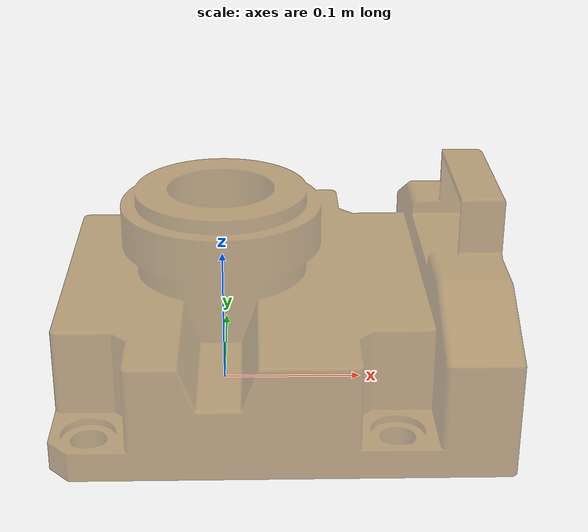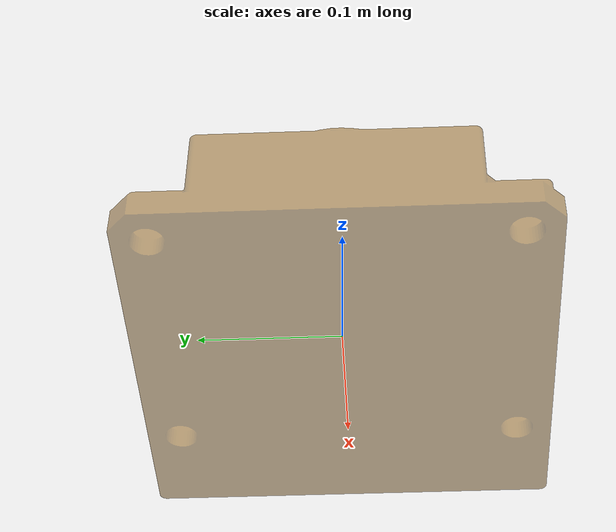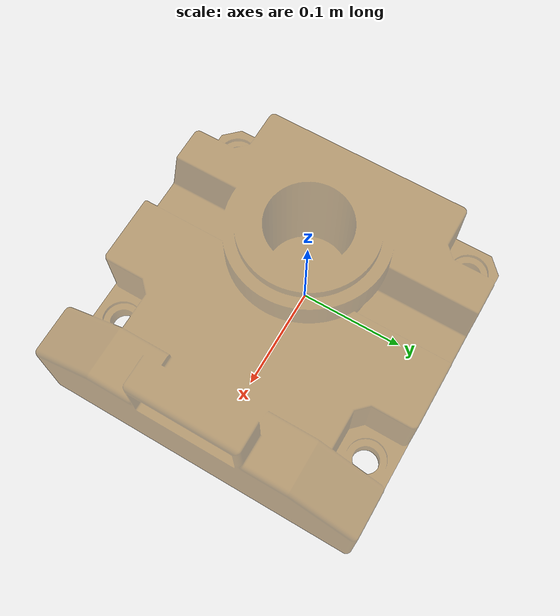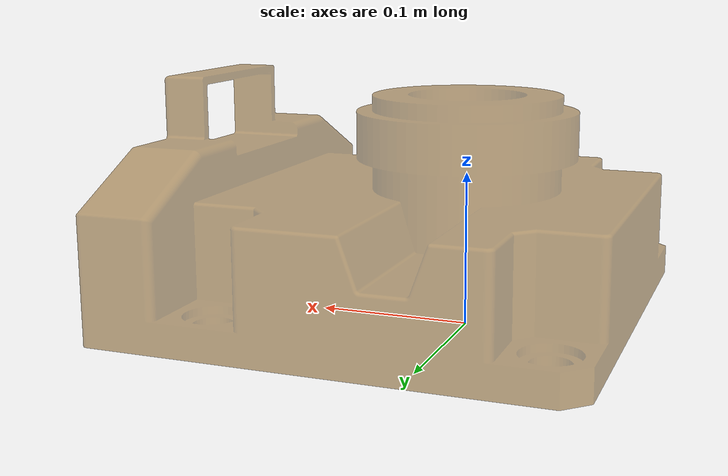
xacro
<robot name="my_base" xmlns:xacro="http://www.ros.org/wiki/xacro">
    <!-- 封装变量、常量 -->
    <!-- PI 值设置精度需要高一些，否则后续车轮翻转量计算时，可能会出现肉眼不能察觉的车轮倾斜，从而导致模型抖动 -->
    <xacro:property name="PI" value="3.1415926"/>
    <!-- 宏:黑色设置 -->
    <material name="black">
        <color rgba="0.0 0.0 0.0 1.0" />
    </material>
    <!-- 底盘属性 -->
    <xacro:property name="base_link_radius" value="0.5" /> <!-- base_link 半径 -->
    <xacro:property name="base_link_length" value="0.02" /> <!-- base_link 长 -->
    <xacro:property name="base_link_m" value="0.5" /> <!-- 质量  -->
    <!-- world -->
    <link name="world"/>

    <link name="base_link">
      <visual>
        <geometry>
          <mesh filename="package://demo02_urdf_gazebo/stl/link_ground.STL"/>
        </geometry>
        <origin xyz="0 0 0" rpy="${PI/2} 0 0" />
        <material name="yellow">
          <color rgba="0.5 0.3 0.0 0.5" />
        </material>
      </visual>
      <collision>
        <geometry>
          <mesh filename="package://demo02_urdf_gazebo/stl/link_ground.STL"/>
        </geometry>
        <origin xyz="0 0 0" rpy="${PI/2} 0 0" />
      </collision>
      <inertial>
        <origin xyz="0.039 0 0.055" />
        <mass value="8.050" />
        <inertia ixx="0.069167" ixy="0" ixz="0" iyy="0.076187" iyz="0" izz="0.119082" />
      </inertial>

    </link>

    <joint name="base_link2base_footprint" type="fixed">
      <parent link="world" />
      <child link="base_link" />
      <origin xyz="0 0 ${base_link_length / 2 }" />
    </joint>
    <gazebo reference="base_link">
        <material>Gazebo/Yellow</material>
    </gazebo>

</robot>
